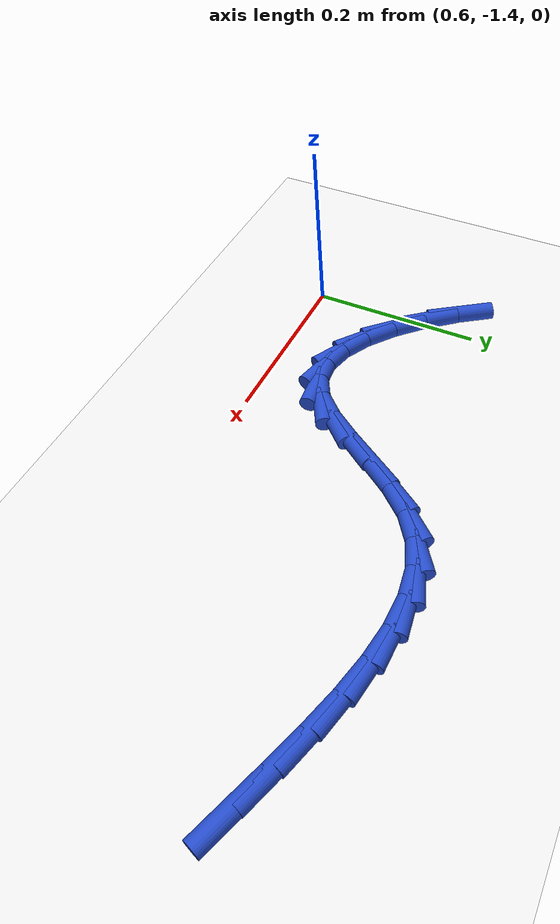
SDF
<sdf version="1.6">
 <world name="default">
  <model name="ground_plane">
   <static>1</static>
   <link name="link">
    <collision name="collision">
     <geometry><plane><normal>0 0 1</normal><size>100 100</size></plane></geometry>
     <surface><friction><ode><mu>100</mu><mu2>50</mu2></ode></friction></surface>
    </collision>
    <visual name="visual">
     <cast_shadows>0</cast_shadows>
     <geometry><plane><normal>0 0 1</normal><size>100 100</size></plane></geometry>
     <material>
      <script><uri>file://media/materials/scripts/gazebo.material</uri><name>Gazebo/WhiteGlow</name></script>
     </material>
    </visual>
   </link>
  </model>
  <model name="line">
   <link name="link_201">
    <pose>1.1946137686322216 -1.1932904149925736 0.01 0 1.57 -0.3537141990523024</pose>
    <collision name="collision">
     <geometry><cylinder><radius>0.01</radius><length>0.08</length></cylinder></geometry>
    </collision>
    <visual name="visual">
     <material>
      <script><name>Gazebo/Blue</name><uri>file://media/materials/scripts/gazebo.material</uri></script>
     </material>
     <geometry><cylinder><radius>0.01</radius><length>0.08</length></cylinder></geometry>
    </visual>
   </link>
   <link name="link_202">
    <pose>1.1544527998248317 -1.178461245169456 0.01 0 1.57 -0.33893713265874403</pose>
    <collision name="collision">
     <geometry><cylinder><radius>0.01</radius><length>0.08</length></cylinder></geometry>
    </collision>
    <visual name="visual">
     <material>
      <script><name>Gazebo/Blue</name><uri>file://media/materials/scripts/gazebo.material</uri></script>
     </material>
     <geometry><cylinder><radius>0.01</radius><length>0.08</length></cylinder></geometry>
    </visual>
   </link>
   <link name="link_203">
    <pose>1.1146091586403828 -1.1644147096015438 0.01 0 1.57 -0.3033354836049261</pose>
    <collision name="collision">
     <geometry><cylinder><radius>0.01</radius><length>0.08</length></cylinder></geometry>
    </collision>
    <visual name="visual">
     <material>
      <script><name>Gazebo/Blue</name><uri>file://media/materials/scripts/gazebo.material</uri></script>
     </material>
     <geometry><cylinder><radius>0.01</radius><length>0.08</length></cylinder></geometry>
    </visual>
   </link>
   <link name="link_204">
    <pose>1.0754674684741106 -1.1521635684094313 0.01 0 1.57 -0.24322706942457778</pose>
    <collision name="collision">
     <geometry><cylinder><radius>0.01</radius><length>0.08</length></cylinder></geometry>
    </collision>
    <visual name="visual">
     <material>
      <script><name>Gazebo/Blue</name><uri>file://media/materials/scripts/gazebo.material</uri></script>
     </material>
     <geometry><cylinder><radius>0.01</radius><length>0.08</length></cylinder></geometry>
    </visual>
   </link>
   <link name="link_205">
    <pose>1.0374123527212555 -1.1427205817137156 0.01 0 1.57 -0.1524831553563832</pose>
    <collision name="collision">
     <geometry><cylinder><radius>0.01</radius><length>0.08</length></cylinder></geometry>
    </collision>
    <visual name="visual">
     <material>
      <script><name>Gazebo/Blue</name><uri>file://media/materials/scripts/gazebo.material</uri></script>
     </material>
     <geometry><cylinder><radius>0.01</radius><length>0.08</length></cylinder></geometry>
    </visual>
   </link>
   <link name="link_206">
    <pose>1.0008284347770537 -1.137098509634992 0.01 0 1.57 -0.02269810370689987</pose>
    <collision name="collision">
     <geometry><cylinder><radius>0.01</radius><length>0.08</length></cylinder></geometry>
    </collision>
    <visual name="visual">
     <material>
      <script><name>Gazebo/Blue</name><uri>file://media/materials/scripts/gazebo.material</uri></script>
     </material>
     <geometry><cylinder><radius>0.01</radius><length>0.08</length></cylinder></geometry>
    </visual>
   </link>
   <link name="link_207">
    <pose>0.9661003380367427 -1.136310112293855 0.01 0 1.57 0.1544510918155521</pose>
    <collision name="collision">
     <geometry><cylinder><radius>0.01</radius><length>0.08</length></cylinder></geometry>
    </collision>
    <visual name="visual">
     <material>
      <script><name>Gazebo/Blue</name><uri>file://media/materials/scripts/gazebo.material</uri></script>
     </material>
     <geometry><cylinder><radius>0.01</radius><length>0.08</length></cylinder></geometry>
    </visual>
   </link>
   <link name="link_208">
    <pose>0.9336126858955597 -1.1413681498109007 0.01 0 1.57 0.3797035594199858</pose>
    <collision name="collision">
     <geometry><cylinder><radius>0.01</radius><length>0.08</length></cylinder></geometry>
    </collision>
    <visual name="visual">
     <material>
      <script><name>Gazebo/Blue</name><uri>file://media/materials/scripts/gazebo.material</uri></script>
     </material>
     <geometry><cylinder><radius>0.01</radius><length>0.08</length></cylinder></geometry>
    </visual>
   </link>
   <link name="link_209">
    <pose>0.9037501017487426 -1.1532853823067248 0.01 0 1.57 0.6350355073223896</pose>
    <collision name="collision">
     <geometry><cylinder><radius>0.01</radius><length>0.08</length></cylinder></geometry>
    </collision>
    <visual name="visual">
     <material>
      <script><name>Gazebo/Blue</name><uri>file://media/materials/scripts/gazebo.material</uri></script>
     </material>
     <geometry><cylinder><radius>0.01</radius><length>0.08</length></cylinder></geometry>
    </visual>
   </link>
   <link name="link_210">
    <pose>0.8768965735124283 -1.1730725560384092 0.01 0 1.57 0.8575575876078326</pose>
    <collision name="collision">
     <geometry><cylinder><radius>0.01</radius><length>0.08</length></cylinder></geometry>
    </collision>
    <visual name="visual">
     <material>
      <script><name>Gazebo/Blue</name><uri>file://media/materials/scripts/gazebo.material</uri></script>
     </material>
     <geometry><cylinder><radius>0.01</radius><length>0.08</length></cylinder></geometry>
    </visual>
   </link>
   <link name="link_211">
    <pose>0.8530773676659559 -1.200603611957223 0.01 0 1.57 0.9762624804831945</pose>
    <collision name="collision">
     <geometry><cylinder><radius>0.01</radius><length>0.08</length></cylinder></geometry>
    </collision>
    <visual name="visual">
     <material>
      <script><name>Gazebo/Blue</name><uri>file://media/materials/scripts/gazebo.material</uri></script>
     </material>
     <geometry><cylinder><radius>0.01</radius><length>0.08</length></cylinder></geometry>
    </visual>
   </link>
   <link name="link_212">
    <pose>0.8313612502863252 -1.2327212957167824 0.01 0 1.57 1.0111666777302184</pose>
    <collision name="collision">
     <geometry><cylinder><radius>0.01</radius><length>0.08</length></cylinder></geometry>
    </collision>
    <visual name="visual">
     <material>
      <script><name>Gazebo/Blue</name><uri>file://media/materials/scripts/gazebo.material</uri></script>
     </material>
     <geometry><cylinder><radius>0.01</radius><length>0.08</length></cylinder></geometry>
    </visual>
   </link>
   <link name="link_213">
    <pose>0.8106592942672753 -1.2657686157678707 0.01 0 1.57 0.9700392029970977</pose>
    <collision name="collision">
     <geometry><cylinder><radius>0.01</radius><length>0.08</length></cylinder></geometry>
    </collision>
    <visual name="visual">
     <material>
      <script><name>Gazebo/Blue</name><uri>file://media/materials/scripts/gazebo.material</uri></script>
     </material>
     <geometry><cylinder><radius>0.01</radius><length>0.08</length></cylinder></geometry>
    </visual>
   </link>
   <link name="link_214">
    <pose>0.7898825725025466 -1.296088580561269 0.01 0 1.57 0.828861966116024</pose>
    <collision name="collision">
     <geometry><cylinder><radius>0.01</radius><length>0.08</length></cylinder></geometry>
    </collision>
    <visual name="visual">
     <material>
      <script><name>Gazebo/Blue</name><uri>file://media/materials/scripts/gazebo.material</uri></script>
     </material>
     <geometry><cylinder><radius>0.01</radius><length>0.08</length></cylinder></geometry>
    </visual>
   </link>
   <link name="link_215">
    <pose>0.7679421578858769 -1.3200241985477603 0.01 0 1.57 0.5245022585967838</pose>
    <collision name="collision">
     <geometry><cylinder><radius>0.01</radius><length>0.08</length></cylinder></geometry>
    </collision>
    <visual name="visual">
     <material>
      <script><name>Gazebo/Blue</name><uri>file://media/materials/scripts/gazebo.material</uri></script>
     </material>
     <geometry><cylinder><radius>0.01</radius><length>0.08</length></cylinder></geometry>
    </visual>
   </link>
   <link name="link_216">
    <pose>0.7437806757229354 -1.334002957961319 0.01 0 1.57 0.10208416298972324</pose>
    <collision name="collision">
     <geometry><cylinder><radius>0.01</radius><length>0.08</length></cylinder></geometry>
    </collision>
    <visual name="visual">
     <material>
      <script><name>Gazebo/Blue</name><uri>file://media/materials/scripts/gazebo.material</uri></script>
     </material>
     <geometry><cylinder><radius>0.01</radius><length>0.08</length></cylinder></geometry>
    </visual>
   </link>
   <link name="link_217">
    <pose>0.7171902704262701 -1.3367268859880148 0.01 0 1.57 -0.25419142640668163</pose>
    <collision name="collision">
     <geometry><cylinder><radius>0.01</radius><length>0.08</length></cylinder></geometry>
    </collision>
    <visual name="visual">
     <material>
      <script><name>Gazebo/Blue</name><uri>file://media/materials/scripts/gazebo.material</uri></script>
     </material>
     <geometry><cylinder><radius>0.01</radius><length>0.08</length></cylinder></geometry>
    </visual>
   </link>
   <link name="link_218">
    <pose>0.6888876770654266 -1.3293735485593716 0.01 0 1.57 -0.5038917284555066</pose>
    <collision name="collision">
     <geometry><cylinder><radius>0.01</radius><length>0.08</length></cylinder></geometry>
    </collision>
    <visual name="visual">
     <material>
      <script><name>Gazebo/Blue</name><uri>file://media/materials/scripts/gazebo.material</uri></script>
     </material>
     <geometry><cylinder><radius>0.01</radius><length>0.08</length></cylinder></geometry>
    </visual>
   </link>
   <link name="link_219">
    <pose>0.6596362311907639 -1.3132452817362004 0.01 0 1.57 -0.6758024563100702</pose>
    <collision name="collision">
     <geometry><cylinder><radius>0.01</radius><length>0.08</length></cylinder></geometry>
    </collision>
    <visual name="visual">
     <material>
      <script><name>Gazebo/Blue</name><uri>file://media/materials/scripts/gazebo.material</uri></script>
     </material>
     <geometry><cylinder><radius>0.01</radius><length>0.08</length></cylinder></geometry>
    </visual>
   </link>
   <link name="link_220">
    <pose>0.6301992683526403 -1.2896444215793115 0.01 0 1.57 -0.8009515587488897</pose>
    <collision name="collision">
     <geometry><cylinder><radius>0.01</radius><length>0.08</length></cylinder></geometry>
    </collision>
    <visual name="visual">
     <material>
      <script><name>Gazebo/Blue</name><uri>file://media/materials/scripts/gazebo.material</uri></script>
     </material>
     <geometry><cylinder><radius>0.01</radius><length>0.08</length></cylinder></geometry>
    </visual>
   </link>
   <link name="link_221">
    <pose>0.601340124101417 -1.2598733041495171 0.01 0 1.57 -0.8994662998087039</pose>
    <collision name="collision">
     <geometry><cylinder><radius>0.01</radius><length>0.08</length></cylinder></geometry>
    </collision>
    <visual name="visual">
     <material>
      <script><name>Gazebo/Blue</name><uri>file://media/materials/scripts/gazebo.material</uri></script>
     </material>
     <geometry><cylinder><radius>0.01</radius><length>0.08</length></cylinder></geometry>
    </visual>
   </link>
   <link name="link_222">
    <pose>0.573822133987452 -1.2252342655076276 0.01 0 1.57 -0.9838137024490142</pose>
    <collision name="collision">
     <geometry><cylinder><radius>0.01</radius><length>0.08</length></cylinder></geometry>
    </collision>
    <visual name="visual">
     <material>
      <script><name>Gazebo/Blue</name><uri>file://media/materials/scripts/gazebo.material</uri></script>
     </material>
     <geometry><cylinder><radius>0.01</radius><length>0.08</length></cylinder></geometry>
    </visual>
   </link>
  </model>
 </world>
</sdf>
